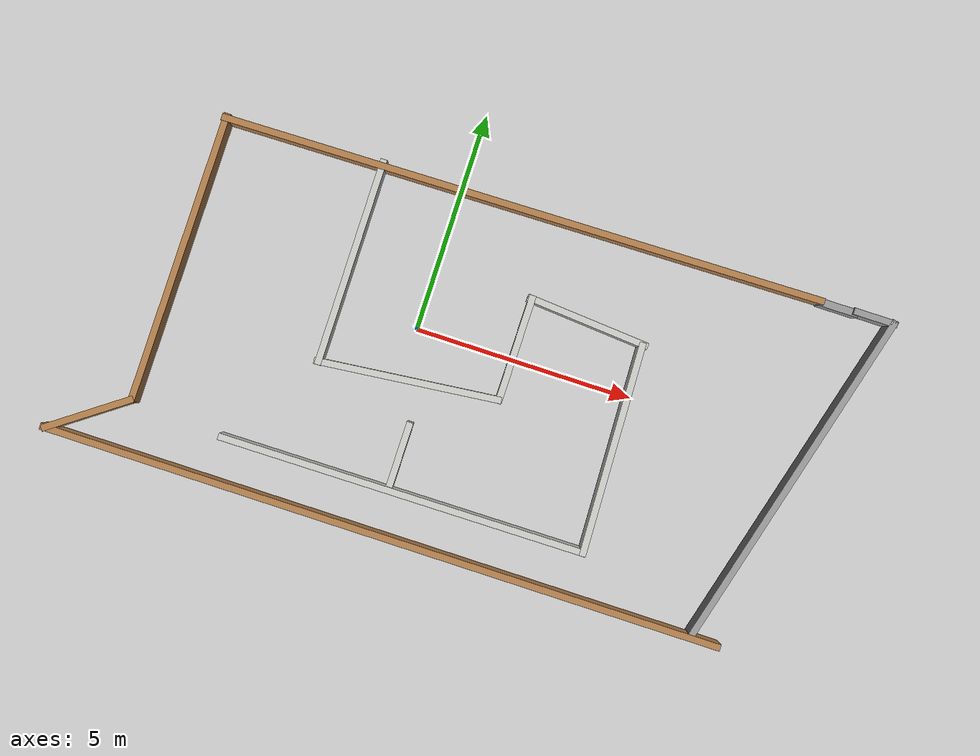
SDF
<sdf version="1.7">
 <world name="default">
  <light name="sun" type="directional">
   <pose>0 0 10 0 -0 0</pose>
   <diffuse>0.8 0.8 0.8 1</diffuse>
   <specular>0.2 0.2 0.2 1</specular>
   <attenuation>
    <range>1000</range>
    <constant>0.9</constant>
    <linear>0.01</linear>
    <quadratic>0.001</quadratic>
   </attenuation>
   <direction>-0.5 0.1 -0.9</direction>
   <spot><inner_angle>0</inner_angle><outer_angle>0</outer_angle><falloff>0</falloff></spot>
  </light>
  <model name="ground_plane">
   <static>1</static>
   <link name="link">
    <collision name="collision">
     <geometry><plane><normal>0 0 1</normal><size>100 100</size></plane></geometry>
     <surface>
      <contact><collide_bitmask>65535</collide_bitmask></contact>
      <friction><ode><mu>100</mu><mu2>50</mu2></ode></friction>
     </surface>
    </collision>
    <visual name="visual">
     <cast_shadows>0</cast_shadows>
     <geometry><plane><normal>0 0 1</normal><size>100 100</size></plane></geometry>
     <material>
      <script><uri>file://media/materials/scripts/gazebo.material</uri><name>Gazebo/Grey</name></script>
     </material>
    </visual>
   </link>
  </model>
  <gravity>0 0 -9.8</gravity>
  <magnetic_field>6e-06 2.3e-05 -4.2e-05</magnetic_field>
  <atmosphere type="adiabatic"/>
  <physics type="ode">
   <max_step_size>0.001</max_step_size>
   <real_time_factor>1</real_time_factor>
   <real_time_update_rate>1000</real_time_update_rate>
  </physics>
  <scene><ambient>0.4 0.4 0.4 1</ambient><background>0.7 0.7 0.7 1</background><shadows>1</shadows></scene>
  <audio><device>default</device></audio>
  <spherical_coordinates>
   <surface_model>EARTH_WGS84</surface_model>
   <latitude_deg>0</latitude_deg>
   <longitude_deg>0</longitude_deg>
   <elevation>0</elevation>
   <heading_deg>0</heading_deg>
  </spherical_coordinates>
  <model name="Untitled">
   <pose>1.41532 -0.630538 0 0 -0 0</pose>
   <link name="Door_1">
    <collision name="Door_1_Collision">
     <geometry><box><size>0.9 0.17 2</size></box></geometry>
     <pose>0 0 1 0 -0 0</pose>
    </collision>
    <visual name="Door_1_Visual">
     <pose>0 0 1 0 -0 0</pose>
     <geometry><box><size>0.9 0.17 2</size></box></geometry>
     <material>
      <script><uri>file://media/materials/scripts/gazebo.material</uri><name>Gazebo/Grey</name></script>
     </material>
    </visual>
    <pose>7.31303 3.96223 0 0 -0 0</pose>
   </link>
   <link name="Wall_0">
    <collision name="Wall_0_Collision">
     <geometry><box><size>2.13018 0.15 2.5</size></box></geometry>
     <pose>0 0 1.25 0 -0 0</pose>
    </collision>
    <visual name="Wall_0_Visual">
     <pose>0 0 1.25 0 -0 0</pose>
     <geometry><box><size>2.13018 0.15 2.5</size></box></geometry>
     <material>
      <script><uri>file://media/materials/scripts/gazebo.material</uri><name>Gazebo/Wood</name></script>
      <ambient>1 1 1 1</ambient>
     </material>
     <meta><layer>0</layer></meta>
    </visual>
    <pose>-7.73021 -3.39735 0 0 -0 -2.5176</pose>
   </link>
   <link name="Wall_1">
    <collision name="Wall_1_Collision">
     <geometry><box><size>15.75 0.15 2.5</size></box></geometry>
     <pose>0 0 1.25 0 -0 0</pose>
    </collision>
    <visual name="Wall_1_Visual">
     <pose>0 0 1.25 0 -0 0</pose>
     <geometry><box><size>15.75 0.15 2.5</size></box></geometry>
     <material>
      <script><uri>file://media/materials/scripts/gazebo.material</uri><name>Gazebo/Wood</name></script>
      <ambient>1 1 1 1</ambient>
     </material>
     <meta><layer>0</layer></meta>
    </visual>
    <pose>-0.753839 -3.97585 0 0 -0 0</pose>
   </link>
   <link name="Wall_10">
    <collision name="Wall_10_Collision">
     <geometry><box><size>4.89461 0.15 2.5</size></box></geometry>
     <pose>0 0 1.25 0 -0 0</pose>
    </collision>
    <visual name="Wall_10_Visual">
     <pose>0 0 1.25 0 -0 0</pose>
     <geometry><box><size>4.89461 0.15 2.5</size></box></geometry>
     <material>
      <script><uri>file://media/materials/scripts/gazebo.material</uri><name>Gazebo/CeilingTiled</name></script>
      <ambient>1 1 1 1</ambient>
     </material>
     <meta><layer>0</layer></meta>
    </visual>
    <pose>3.51189 -0.556879 0 0 -0 -1.53407</pose>
   </link>
   <link name="Wall_11">
    <collision name="Wall_11_Collision">
     <geometry><box><size>8.48333 0.15 2.5</size></box></geometry>
     <pose>0 0 1.25 0 -0 0</pose>
    </collision>
    <visual name="Wall_11_Visual">
     <pose>0 0 1.25 0 -0 0</pose>
     <geometry><box><size>8.48333 0.15 2.5</size></box></geometry>
     <material>
      <script><uri>file://media/materials/scripts/gazebo.material</uri><name>Gazebo/CeilingTiled</name></script>
      <ambient>1 1 1 1</ambient>
     </material>
     <meta><layer>0</layer></meta>
    </visual>
    <pose>-0.594206 -2.95072 0 0 -0 -3.13604</pose>
   </link>
   <link name="Wall_13">
    <collision name="Wall_13_Collision">
     <geometry><box><size>1.5 0.15 2.5</size></box></geometry>
     <pose>0 0 1.25 0 -0 0</pose>
    </collision>
    <visual name="Wall_13_Visual">
     <pose>0 0 1.25 0 -0 0</pose>
     <geometry><box><size>1.5 0.15 2.5</size></box></geometry>
     <material>
      <script><uri>file://media/materials/scripts/gazebo.material</uri><name>Gazebo/CeilingTiled</name></script>
      <ambient>1 1 1 1</ambient>
     </material>
     <meta><layer>0</layer></meta>
    </visual>
    <pose>-0.910798 -2.12292 0 0 -0 1.5708</pose>
   </link>
   <link name="Wall_15">
    <collision name="Wall_15_Collision">
     <geometry><box><size>1 0.15 2.5</size></box></geometry>
     <pose>0 0 1.25 0 -0 0</pose>
    </collision>
    <visual name="Wall_15_Visual">
     <pose>0 0 1.25 0 -0 0</pose>
     <geometry><box><size>1 0.15 2.5</size></box></geometry>
     <material>
      <script><uri>file://media/materials/scripts/gazebo.material</uri><name>Gazebo/Grey</name></script>
      <ambient>1 1 1 1</ambient>
     </material>
     <meta><layer>0</layer></meta>
    </visual>
    <pose>8.12156 3.98868 0 0 -0 0</pose>
   </link>
   <link name="Wall_16">
    <collision name="Wall_16_Collision">
     <geometry><box><size>8.25 0.15 2.5</size></box></geometry>
     <pose>0 0 1.25 0 -0 0</pose>
    </collision>
    <visual name="Wall_16_Visual">
     <pose>0 0 1.25 0 -0 0</pose>
     <geometry><box><size>8.25 0.15 2.5</size></box></geometry>
     <material>
      <script><uri>file://media/materials/scripts/gazebo.material</uri><name>Gazebo/Grey</name></script>
      <ambient>1 1 1 1</ambient>
     </material>
     <meta><layer>0</layer></meta>
    </visual>
    <pose>7.49834 0.076677 0 0 -0 -1.8326</pose>
   </link>
   <link name="Wall_3">
    <collision name="Wall_3_Collision">
     <geometry><box><size>13.8836 0.15 2.5</size></box></geometry>
     <pose>0 0 1.25 0 -0 0</pose>
    </collision>
    <visual name="Wall_3_Visual">
     <pose>0 0 1.25 0 -0 0</pose>
     <geometry><box><size>13.8836 0.15 2.5</size></box></geometry>
     <material>
      <script><uri>file://media/materials/scripts/gazebo.material</uri><name>Gazebo/Wood</name></script>
      <ambient>1 1 1 1</ambient>
     </material>
     <meta><layer>0</layer></meta>
    </visual>
    <pose>-0.000611 3.85502 0 0 -0 -3.12416</pose>
   </link>
   <link name="Wall_4">
    <collision name="Wall_4_Collision">
     <geometry><box><size>6.70446 0.15 2.5</size></box></geometry>
     <pose>0 0 1.25 0 -0 0</pose>
    </collision>
    <visual name="Wall_4_Visual">
     <pose>0 0 1.25 0 -0 0</pose>
     <geometry><box><size>6.70446 0.15 2.5</size></box></geometry>
     <material>
      <script><uri>file://media/materials/scripts/gazebo.material</uri><name>Gazebo/Wood</name></script>
      <ambient>1 1 1 1</ambient>
     </material>
     <meta><layer>0</layer></meta>
    </visual>
    <pose>-6.86993 0.484829 0 0 -0 -1.58</pose>
   </link>
   <link name="Wall_6">
    <collision name="Wall_6_Collision">
     <geometry><box><size>4.75 0.15 2.5</size></box></geometry>
     <pose>0 0 1.25 0 -0 0</pose>
    </collision>
    <visual name="Wall_6_Visual">
     <pose>0 0 1.25 0 -0 0</pose>
     <geometry><box><size>4.75 0.15 2.5</size></box></geometry>
     <material>
      <script><uri>file://media/materials/scripts/gazebo.material</uri><name>Gazebo/CeilingTiled</name></script>
      <ambient>1 1 1 1</ambient>
     </material>
     <meta><layer>0</layer></meta>
    </visual>
    <pose>-3.24943 1.57336 0 0 -0 -1.5708</pose>
   </link>
   <link name="Wall_7">
    <collision name="Wall_7_Collision">
     <geometry><box><size>4.22203 0.15 2.5</size></box></geometry>
     <pose>0 0 1.25 0 -0 0</pose>
    </collision>
    <visual name="Wall_7_Visual">
     <pose>0 0 1.25 0 -0 0</pose>
     <geometry><box><size>4.22203 0.15 2.5</size></box></geometry>
     <material>
      <script><uri>file://media/materials/scripts/gazebo.material</uri><name>Gazebo/CeilingTiled</name></script>
      <ambient>1 1 1 1</ambient>
     </material>
     <meta><layer>0</layer></meta>
    </visual>
    <pose>-1.25097 -0.515753 0 0 -0 0.103764</pose>
   </link>
   <link name="Wall_8">
    <collision name="Wall_8_Collision">
     <geometry><box><size>2.5 0.15 2.5</size></box></geometry>
     <pose>0 0 1.25 0 -0 0</pose>
    </collision>
    <visual name="Wall_8_Visual">
     <pose>0 0 1.25 0 -0 0</pose>
     <geometry><box><size>2.5 0.15 2.5</size></box></geometry>
     <material>
      <script><uri>file://media/materials/scripts/gazebo.material</uri><name>Gazebo/CeilingTiled</name></script>
      <ambient>1 1 1 1</ambient>
     </material>
     <meta><layer>0</layer></meta>
    </visual>
    <pose>0.797228 0.870132 0 0 -0 1.5708</pose>
   </link>
   <link name="Wall_9">
    <collision name="Wall_9_Collision">
     <geometry><box><size>2.85498 0.15 2.5</size></box></geometry>
     <pose>0 0 1.25 0 -0 0</pose>
    </collision>
    <visual name="Wall_9_Visual">
     <pose>0 0 1.25 0 -0 0</pose>
     <geometry><box><size>2.85498 0.15 2.5</size></box></geometry>
     <material>
      <script><uri>file://media/materials/scripts/gazebo.material</uri><name>Gazebo/CeilingTiled</name></script>
      <ambient>1 1 1 1</ambient>
     </material>
     <meta><layer>0</layer></meta>
    </visual>
    <pose>2.12258 1.94104 0 0 -0 -0.077036</pose>
   </link>
   <static>1</static>
  </model>
 </world>
</sdf>
